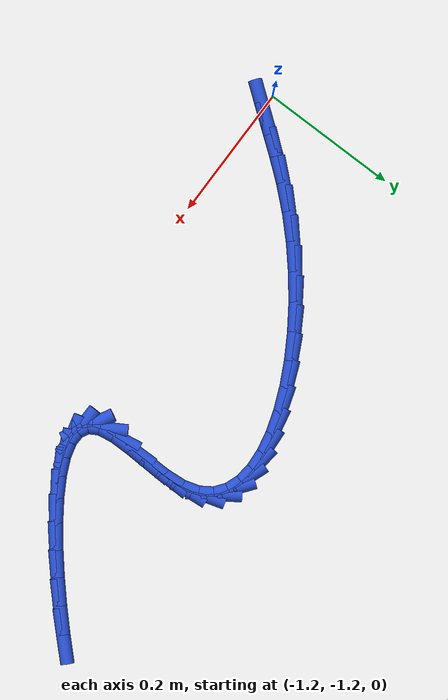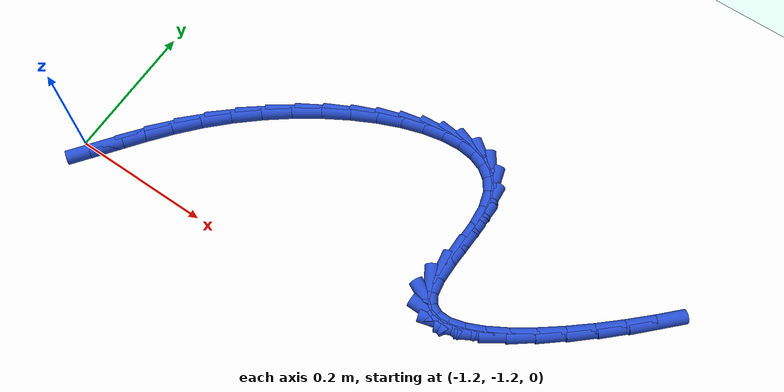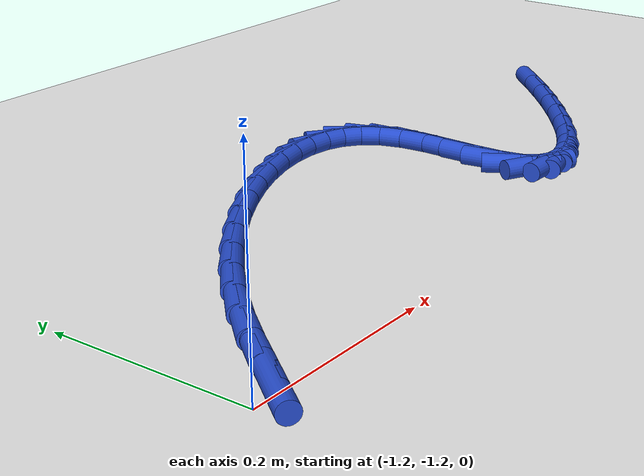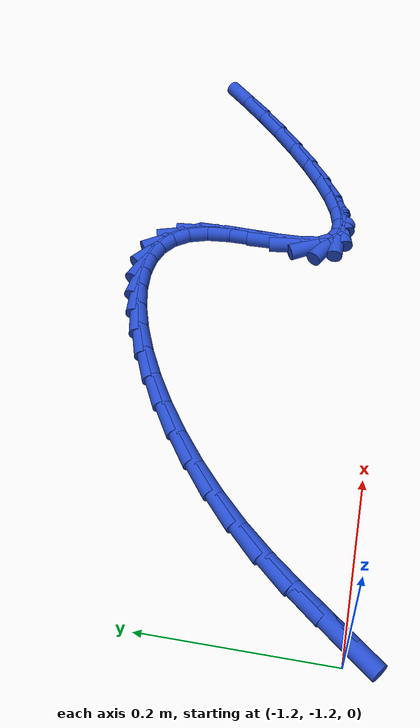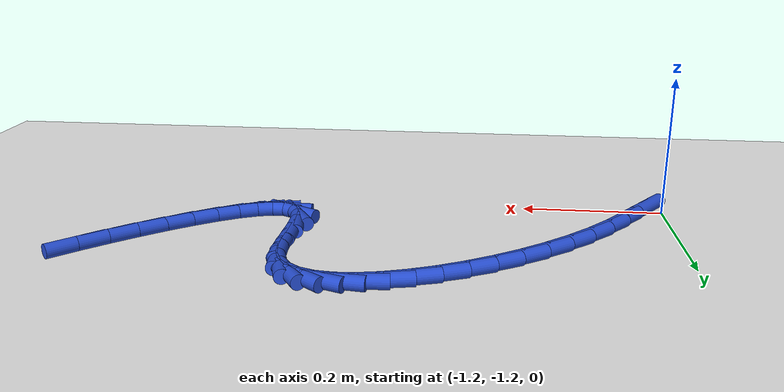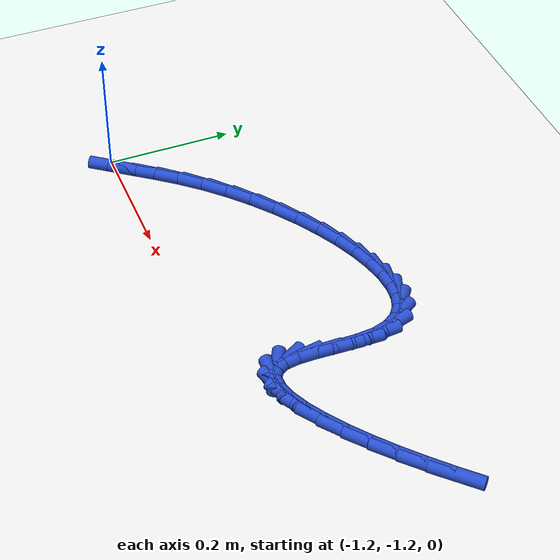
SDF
<sdf version="1.6">
 <world name="default">
  <model name="ground_plane">
   <static>1</static>
   <link name="link">
    <collision name="collision">
     <geometry><plane><normal>0 0 1</normal><size>100 100</size></plane></geometry>
     <surface><friction><ode><mu>100</mu><mu2>50</mu2></ode></friction></surface>
    </collision>
    <visual name="visual">
     <cast_shadows>0</cast_shadows>
     <geometry><plane><normal>0 0 1</normal><size>100 100</size></plane></geometry>
     <material>
      <script><uri>file://media/materials/scripts/gazebo.material</uri><name>Gazebo/WhiteGlow</name></script>
     </material>
    </visual>
   </link>
  </model>
  <model name="line">
   <link name="link_208">
    <pose>-1.1781760958667293 -1.2019992597944498 0.01 0 1.57 0.9204696425226385</pose>
    <collision name="collision">
     <geometry><cylinder><radius>0.01</radius><length>0.08</length></cylinder></geometry>
    </collision>
    <visual name="visual">
     <material>
      <script><name>Gazebo/Blue</name><uri>file://media/materials/scripts/gazebo.material</uri></script>
     </material>
     <geometry><cylinder><radius>0.01</radius><length>0.08</length></cylinder></geometry>
    </visual>
   </link>
   <link name="link_209">
    <pose>-1.1584244948085411 -1.176034909038464 0.01 0 1.57 0.9234717082334216</pose>
    <collision name="collision">
     <geometry><cylinder><radius>0.01</radius><length>0.08</length></cylinder></geometry>
    </collision>
    <visual name="visual">
     <material>
      <script><name>Gazebo/Blue</name><uri>file://media/materials/scripts/gazebo.material</uri></script>
     </material>
     <geometry><cylinder><radius>0.01</radius><length>0.08</length></cylinder></geometry>
    </visual>
   </link>
   <link name="link_210">
    <pose>-1.1353612934787585 -1.1455276837272452 0.01 0 1.57 0.8949156299892902</pose>
    <collision name="collision">
     <geometry><cylinder><radius>0.01</radius><length>0.08</length></cylinder></geometry>
    </collision>
    <visual name="visual">
     <material>
      <script><name>Gazebo/Blue</name><uri>file://media/materials/scripts/gazebo.material</uri></script>
     </material>
     <geometry><cylinder><radius>0.01</radius><length>0.08</length></cylinder></geometry>
    </visual>
   </link>
   <link name="link_211">
    <pose>-1.10933760742845 -1.1130739733939632 0.01 0 1.57 0.8396150516196508</pose>
    <collision name="collision">
     <geometry><cylinder><radius>0.01</radius><length>0.08</length></cylinder></geometry>
    </collision>
    <visual name="visual">
     <material>
      <script><name>Gazebo/Blue</name><uri>file://media/materials/scripts/gazebo.material</uri></script>
     </material>
     <geometry><cylinder><radius>0.01</radius><length>0.08</length></cylinder></geometry>
    </visual>
   </link>
   <link name="link_212">
    <pose>-1.08071204545087 -1.0811630942947243 0.01 0 1.57 0.7757709180791101</pose>
    <collision name="collision">
     <geometry><cylinder><radius>0.01</radius><length>0.08</length></cylinder></geometry>
    </collision>
    <visual name="visual">
     <material>
      <script><name>Gazebo/Blue</name><uri>file://media/materials/scripts/gazebo.material</uri></script>
     </material>
     <geometry><cylinder><radius>0.01</radius><length>0.08</length></cylinder></geometry>
    </visual>
   </link>
   <link name="link_213">
    <pose>-1.0499349885288525 -1.0509730012162568 0.01 0 1.57 0.7154226975753261</pose>
    <collision name="collision">
     <geometry><cylinder><radius>0.01</radius><length>0.08</length></cylinder></geometry>
    </collision>
    <visual name="visual">
     <material>
      <script><name>Gazebo/Blue</name><uri>file://media/materials/scripts/gazebo.material</uri></script>
     </material>
     <geometry><cylinder><radius>0.01</radius><length>0.08</length></cylinder></geometry>
    </visual>
   </link>
   <link name="link_214">
    <pose>-1.0175183177597515 -1.0228028546078154 0.01 0 1.57 0.6569065845452357</pose>
    <collision name="collision">
     <geometry><cylinder><radius>0.01</radius><length>0.08</length></cylinder></geometry>
    </collision>
    <visual name="visual">
     <material>
      <script><name>Gazebo/Blue</name><uri>file://media/materials/scripts/gazebo.material</uri></script>
     </material>
     <geometry><cylinder><radius>0.01</radius><length>0.08</length></cylinder></geometry>
    </visual>
   </link>
   <link name="link_215">
    <pose>-0.983975047329108 -0.9969356238677811 0.01 0 1.57 0.5982705855960658</pose>
    <collision name="collision">
     <geometry><cylinder><radius>0.01</radius><length>0.08</length></cylinder></geometry>
    </collision>
    <visual name="visual">
     <material>
      <script><name>Gazebo/Blue</name><uri>file://media/materials/scripts/gazebo.material</uri></script>
     </material>
     <geometry><cylinder><radius>0.01</radius><length>0.08</length></cylinder></geometry>
    </visual>
   </link>
   <link name="link_216">
    <pose>-0.9498181914224629 -0.9736542783945363 0.01 0 1.57 0.5373668111343114</pose>
    <collision name="collision">
     <geometry><cylinder><radius>0.01</radius><length>0.08</length></cylinder></geometry>
    </collision>
    <visual name="visual">
     <material>
      <script><name>Gazebo/Blue</name><uri>file://media/materials/scripts/gazebo.material</uri></script>
     </material>
     <geometry><cylinder><radius>0.01</radius><length>0.08</length></cylinder></geometry>
    </visual>
   </link>
   <link name="link_217">
    <pose>-0.9155607642253555 -0.9532417875864618 0.01 0 1.57 0.47160911386681376</pose>
    <collision name="collision">
     <geometry><cylinder><radius>0.01</radius><length>0.08</length></cylinder></geometry>
    </collision>
    <visual name="visual">
     <material>
      <script><name>Gazebo/Blue</name><uri>file://media/materials/scripts/gazebo.material</uri></script>
     </material>
     <geometry><cylinder><radius>0.01</radius><length>0.08</length></cylinder></geometry>
    </visual>
   </link>
   <link name="link_218">
    <pose>-0.8817157799233293 -0.9359811208419409 0.01 0 1.57 0.397619517962611</pose>
    <collision name="collision">
     <geometry><cylinder><radius>0.01</radius><length>0.08</length></cylinder></geometry>
    </collision>
    <visual name="visual">
     <material>
      <script><name>Gazebo/Blue</name><uri>file://media/materials/scripts/gazebo.material</uri></script>
     </material>
     <geometry><cylinder><radius>0.01</radius><length>0.08</length></cylinder></geometry>
    </visual>
   </link>
   <link name="link_219">
    <pose>-0.8487962527019236 -0.922155247559355 0.01 0 1.57 0.310687298984443</pose>
    <collision name="collision">
     <geometry><cylinder><radius>0.01</radius><length>0.08</length></cylinder></geometry>
    </collision>
    <visual name="visual">
     <material>
      <script><name>Gazebo/Blue</name><uri>file://media/materials/scripts/gazebo.material</uri></script>
     </material>
     <geometry><cylinder><radius>0.01</radius><length>0.08</length></cylinder></geometry>
    </visual>
   </link>
   <link name="link_220">
    <pose>-0.8173151967466795 -0.9120471371370855 0.01 0 1.57 0.20394692007551224</pose>
    <collision name="collision">
     <geometry><cylinder><radius>0.01</radius><length>0.08</length></cylinder></geometry>
    </collision>
    <visual name="visual">
     <material>
      <script><name>Gazebo/Blue</name><uri>file://media/materials/scripts/gazebo.material</uri></script>
     </material>
     <geometry><cylinder><radius>0.01</radius><length>0.08</length></cylinder></geometry>
    </visual>
   </link>
   <link name="link_221">
    <pose>-0.7877856262431376 -0.9059397589735145 0.01 0 1.57 0.06727948517709458</pose>
    <collision name="collision">
     <geometry><cylinder><radius>0.01</radius><length>0.08</length></cylinder></geometry>
    </collision>
    <visual name="visual">
     <material>
      <script><name>Gazebo/Blue</name><uri>file://media/materials/scripts/gazebo.material</uri></script>
     </material>
     <geometry><cylinder><radius>0.01</radius><length>0.08</length></cylinder></geometry>
    </visual>
   </link>
   <link name="link_222">
    <pose>-0.7607205553768388 -0.9041160824670237 0.01 0 1.57 -0.1133875525900061</pose>
    <collision name="collision">
     <geometry><cylinder><radius>0.01</radius><length>0.08</length></cylinder></geometry>
    </collision>
    <visual name="visual">
     <material>
      <script><name>Gazebo/Blue</name><uri>file://media/materials/scripts/gazebo.material</uri></script>
     </material>
     <geometry><cylinder><radius>0.01</radius><length>0.08</length></cylinder></geometry>
    </visual>
   </link>
   <link name="link_223">
    <pose>-0.7366329983333242 -0.906859077015995 0.01 0 1.57 -0.3531723074269733</pose>
    <collision name="collision">
     <geometry><cylinder><radius>0.01</radius><length>0.08</length></cylinder></geometry>
    </collision>
    <visual name="visual">
     <material>
      <script><name>Gazebo/Blue</name><uri>file://media/materials/scripts/gazebo.material</uri></script>
     </material>
     <geometry><cylinder><radius>0.01</radius><length>0.08</length></cylinder></geometry>
    </visual>
   </link>
   <link name="link_224">
    <pose>-0.7160359692981343 -0.9144517120188103 0.01 0 1.57 -0.6542182719174784</pose>
    <collision name="collision">
     <geometry><cylinder><radius>0.01</radius><length>0.08</length></cylinder></geometry>
    </collision>
    <visual name="visual">
     <material>
      <script><name>Gazebo/Blue</name><uri>file://media/materials/scripts/gazebo.material</uri></script>
     </material>
     <geometry><cylinder><radius>0.01</radius><length>0.08</length></cylinder></geometry>
    </visual>
   </link>
   <link name="link_225">
    <pose>-0.69944248245681 -0.9271769568738513 0.01 0 1.57 -0.9834409514437089</pose>
    <collision name="collision">
     <geometry><cylinder><radius>0.01</radius><length>0.08</length></cylinder></geometry>
    </collision>
    <visual name="visual">
     <material>
      <script><name>Gazebo/Blue</name><uri>file://media/materials/scripts/gazebo.material</uri></script>
     </material>
     <geometry><cylinder><radius>0.01</radius><length>0.08</length></cylinder></geometry>
    </visual>
   </link>
   <link name="link_226">
    <pose>-0.6873655519948917 -0.9453177809795001 0.01 0 1.57 -1.2831392418184553</pose>
    <collision name="collision">
     <geometry><cylinder><radius>0.01</radius><length>0.08</length></cylinder></geometry>
    </collision>
    <visual name="visual">
     <material>
      <script><name>Gazebo/Blue</name><uri>file://media/materials/scripts/gazebo.material</uri></script>
     </material>
     <geometry><cylinder><radius>0.01</radius><length>0.08</length></cylinder></geometry>
    </visual>
   </link>
   <link name="link_227">
    <pose>-0.6803138437829636 -0.9691521499714674 0.01 0 1.57 -1.4917955033557238</pose>
    <collision name="collision">
     <geometry><cylinder><radius>0.01</radius><length>0.08</length></cylinder></geometry>
    </collision>
    <visual name="visual">
     <material>
      <script><name>Gazebo/Blue</name><uri>file://media/materials/scripts/gazebo.material</uri></script>
     </material>
     <geometry><cylinder><radius>0.01</radius><length>0.08</length></cylinder></geometry>
    </visual>
   </link>
   <link name="link_228">
    <pose>-0.6780245262642106 -0.9980702396023571 0.01 0 1.57 1.5530947103943324</pose>
    <collision name="collision">
     <geometry><cylinder><radius>0.01</radius><length>0.08</length></cylinder></geometry>
    </collision>
    <visual name="visual">
     <material>
      <script><name>Gazebo/Blue</name><uri>file://media/materials/scripts/gazebo.material</uri></script>
     </material>
     <geometry><cylinder><radius>0.01</radius><length>0.08</length></cylinder></geometry>
    </visual>
   </link>
   <link name="link_229">
    <pose>-0.6785820101317629 -1.029560337740747 0.01 0 1.57 1.5300801134356112</pose>
    <collision name="collision">
     <geometry><cylinder><radius>0.01</radius><length>0.08</length></cylinder></geometry>
    </collision>
    <visual name="visual">
     <material>
      <script><name>Gazebo/Blue</name><uri>file://media/materials/scripts/gazebo.material</uri></script>
     </material>
     <geometry><cylinder><radius>0.01</radius><length>0.08</length></cylinder></geometry>
    </visual>
   </link>
   <link name="link_230">
    <pose>-0.6798573301154519 -1.0608651928473205 0.01 0 1.57 -1.5660080041788744</pose>
    <collision name="collision">
     <geometry><cylinder><radius>0.01</radius><length>0.08</length></cylinder></geometry>
    </collision>
    <visual name="visual">
     <material>
      <script><name>Gazebo/Blue</name><uri>file://media/materials/scripts/gazebo.material</uri></script>
     </material>
     <geometry><cylinder><radius>0.01</radius><length>0.08</length></cylinder></geometry>
    </visual>
   </link>
   <link name="link_231">
    <pose>-0.679721520945109 -1.0892275533827618 0.01 0 1.57 -1.409997004045342</pose>
    <collision name="collision">
     <geometry><cylinder><radius>0.01</radius><length>0.08</length></cylinder></geometry>
    </collision>
    <visual name="visual">
     <material>
      <script><name>Gazebo/Blue</name><uri>file://media/materials/scripts/gazebo.material</uri></script>
     </material>
     <geometry><cylinder><radius>0.01</radius><length>0.08</length></cylinder></geometry>
    </visual>
   </link>
   <link name="link_232">
    <pose>-0.6760456457217376 -1.1118902036603233 0.01 0 1.57 -1.034558264306493</pose>
    <collision name="collision">
     <geometry><cylinder><radius>0.01</radius><length>0.08</length></cylinder></geometry>
    </collision>
    <visual name="visual">
     <material>
      <script><name>Gazebo/Blue</name><uri>file://media/materials/scripts/gazebo.material</uri></script>
     </material>
     <geometry><cylinder><radius>0.01</radius><length>0.08</length></cylinder></geometry>
    </visual>
   </link>
   <link name="link_233">
    <pose>-0.667215902128017 -1.1267469020921796 0.01 0 1.57 -0.4851459761781696</pose>
    <collision name="collision">
     <geometry><cylinder><radius>0.01</radius><length>0.08</length></cylinder></geometry>
    </collision>
    <visual name="visual">
     <material>
      <script><name>Gazebo/Blue</name><uri>file://media/materials/scripts/gazebo.material</uri></script>
     </material>
     <geometry><cylinder><radius>0.01</radius><length>0.08</length></cylinder></geometry>
    </visual>
   </link>
   <link name="link_234">
    <pose>-0.6534488708373755 -1.134004456845795 0.01 0 1.57 -0.02094288851607734</pose>
    <collision name="collision">
     <geometry><cylinder><radius>0.01</radius><length>0.08</length></cylinder></geometry>
    </collision>
    <visual name="visual">
     <material>
      <script><name>Gazebo/Blue</name><uri>file://media/materials/scripts/gazebo.material</uri></script>
     </material>
     <geometry><cylinder><radius>0.01</radius><length>0.08</length></cylinder></geometry>
    </visual>
   </link>
   <link name="link_235">
    <pose>-0.6353674897592927 -1.1343831885667048 0.01 0 1.57 0.25947399804858656</pose>
    <collision name="collision">
     <geometry><cylinder><radius>0.01</radius><length>0.08</length></cylinder></geometry>
    </collision>
    <visual name="visual">
     <material>
      <script><name>Gazebo/Blue</name><uri>file://media/materials/scripts/gazebo.material</uri></script>
     </material>
     <geometry><cylinder><radius>0.01</radius><length>0.08</length></cylinder></geometry>
    </visual>
   </link>
   <link name="link_236">
    <pose>-0.6135946968032461 -1.1286034179004472 0.01 0 1.57 0.42417152838853045</pose>
    <collision name="collision">
     <geometry><cylinder><radius>0.01</radius><length>0.08</length></cylinder></geometry>
    </collision>
    <visual name="visual">
     <material>
      <script><name>Gazebo/Blue</name><uri>file://media/materials/scripts/gazebo.material</uri></script>
     </material>
     <geometry><cylinder><radius>0.01</radius><length>0.08</length></cylinder></geometry>
    </visual>
   </link>
   <link name="link_237">
    <pose>-0.5887534298787144 -1.1173854654925581 0.01 0 1.57 0.5285804735405064</pose>
    <collision name="collision">
     <geometry><cylinder><radius>0.01</radius><length>0.08</length></cylinder></geometry>
    </collision>
    <visual name="visual">
     <material>
      <script><name>Gazebo/Blue</name><uri>file://media/materials/scripts/gazebo.material</uri></script>
     </material>
     <geometry><cylinder><radius>0.01</radius><length>0.08</length></cylinder></geometry>
    </visual>
   </link>
   <link name="link_238">
    <pose>-0.5614666268951756 -1.101449651988575 0.01 0 1.57 0.600433746648762</pose>
    <collision name="collision">
     <geometry><cylinder><radius>0.01</radius><length>0.08</length></cylinder></geometry>
    </collision>
    <visual name="visual">
     <material>
      <script><name>Gazebo/Blue</name><uri>file://media/materials/scripts/gazebo.material</uri></script>
     </material>
     <geometry><cylinder><radius>0.01</radius><length>0.08</length></cylinder></geometry>
    </visual>
   </link>
   <link name="link_239">
    <pose>-0.5323572257621081 -1.0815162980340343 0.01 0 1.57 0.6535344668638922</pose>
    <collision name="collision">
     <geometry><cylinder><radius>0.01</radius><length>0.08</length></cylinder></geometry>
    </collision>
    <visual name="visual">
     <material>
      <script><name>Gazebo/Blue</name><uri>file://media/materials/scripts/gazebo.material</uri></script>
     </material>
     <geometry><cylinder><radius>0.01</radius><length>0.08</length></cylinder></geometry>
    </visual>
   </link>
   <link name="link_240">
    <pose>-0.50204816438899 -1.0583057242744727 0.01 0 1.57 0.6952982565247474</pose>
    <collision name="collision">
     <geometry><cylinder><radius>0.01</radius><length>0.08</length></cylinder></geometry>
    </collision>
    <visual name="visual">
     <material>
      <script><name>Gazebo/Blue</name><uri>file://media/materials/scripts/gazebo.material</uri></script>
     </material>
     <geometry><cylinder><radius>0.01</radius><length>0.08</length></cylinder></geometry>
    </visual>
   </link>
   <link name="link_241">
    <pose>-0.4711623806852999 -1.0325382513554275 0.01 0 1.57 0.7300932850480185</pose>
    <collision name="collision">
     <geometry><cylinder><radius>0.01</radius><length>0.08</length></cylinder></geometry>
    </collision>
    <visual name="visual">
     <material>
      <script><name>Gazebo/Blue</name><uri>file://media/materials/scripts/gazebo.material</uri></script>
     </material>
     <geometry><cylinder><radius>0.01</radius><length>0.08</length></cylinder></geometry>
    </visual>
   </link>
   <link name="link_242">
    <pose>-0.4403228125605159 -1.0049341999224346 0.01 0 1.57 0.7607794753195443</pose>
    <collision name="collision">
     <geometry><cylinder><radius>0.01</radius><length>0.08</length></cylinder></geometry>
    </collision>
    <visual name="visual">
     <material>
      <script><name>Gazebo/Blue</name><uri>file://media/materials/scripts/gazebo.material</uri></script>
     </material>
     <geometry><cylinder><radius>0.01</radius><length>0.08</length></cylinder></geometry>
    </visual>
   </link>
   <link name="link_243">
    <pose>-0.4101523979241157 -0.9762138906210307 0.01 0 1.57 0.789500650094564</pose>
    <collision name="collision">
     <geometry><cylinder><radius>0.01</radius><length>0.08</length></cylinder></geometry>
    </collision>
    <visual name="visual">
     <material>
      <script><name>Gazebo/Blue</name><uri>file://media/materials/scripts/gazebo.material</uri></script>
     </material>
     <geometry><cylinder><radius>0.01</radius><length>0.08</length></cylinder></geometry>
    </visual>
   </link>
  </model>
 </world>
</sdf>
